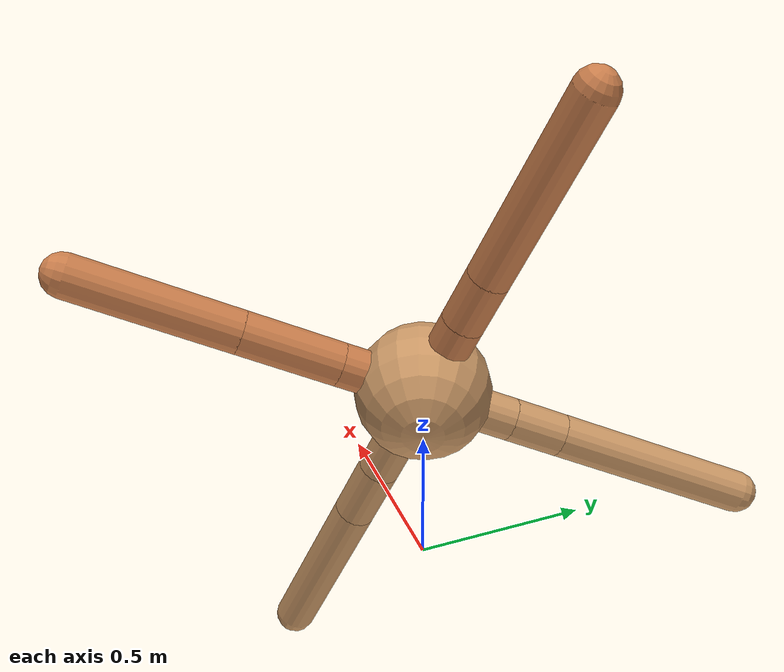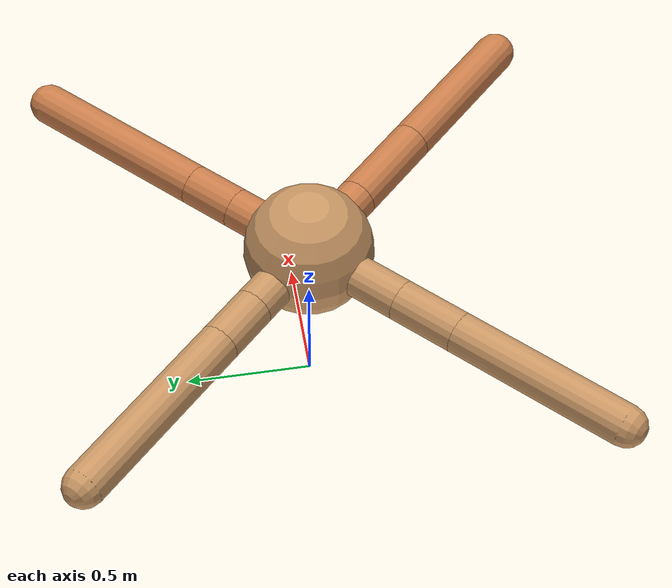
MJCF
<mujoco model="ant">
  <compiler angle="degree" coordinate="local" inertiafromgeom="true" />
  <option integrator="RK4" timestep="0.01" />
  <custom>
    <numeric data="0.0 0.0 0.55 1.0 0.0 0.0 0.0 0.0 1.0 0.0 -1.0 0.0 -1.0 0.0 1.0" name="init_qpos" />
  </custom>
  <default>
    <joint armature="1" damping="1" limited="true" />
    <geom conaffinity="0" condim="3" density="5.0" friction="1.5 0.1 0.1" margin="0.01" rgba="0.8 0.6 0.4 1" />
  </default>
  <worldbody>
    <body name="torso" pos="0 0 0.75">
      <geom name="torso_geom" pos="0 0 0" size="0.25" type="sphere" />

      <body name="front_left_leg" pos="0 0 0">
        <geom fromto="0.0 0.0 0.0 0.2439893659186587 0.2439893659186587 0.0" name="aux_1_geom" size="0.08" type="capsule" rgba=".8 .5 .3 1" />
        <body name="aux_1" pos="0.2439893659186587 0.2439893659186587 0.0">
          <joint axis="0 0 1" name="hip_1" pos="0.0 0.0 0.0" range="-40 40" type="hinge" />
          <geom fromto="0.0 0.0 0.0 0.14498847697659792 0.14498847697659792 0.0" name="left_leg_geom" size="0.08" type="capsule" rgba=".8 .5 .3 1" />
          <body pos="0.14498847697659792 0.14498847697659792 0.0" name="front_left_foot">
            <joint axis="-1 1 0" name="ankle_1" pos="0.0 0.0 0.0" range="30 100" type="hinge" />
            <geom fromto="0.0 0.0 0.0 0.5235946893710374 0.5235946893710374 0.0" name="left_ankle_geom" size="0.08" type="capsule" rgba=".8 .5 .3 1" />
          </body>
        </body>
      </body>
      <body name="front_right_leg" pos="0 0 0">
        <geom fromto="0.0 0.0 0.0 -0.2452326414281879 0.2452326414281879 0.0" name="aux_2_geom" size="0.08" type="capsule" />
        <body name="aux_2" pos="-0.2452326414281879 0.2452326414281879 0.0">
          <joint axis="0 0 1" name="hip_2" pos="0.0 0.0 0.0" range="-40 40" type="hinge" />
          <geom fromto="0.0 0.0 0.0 -0.1430115495497274 0.1430115495497274 0.0" name="right_leg_geom" size="0.08" type="capsule" />
          <body pos="-0.1430115495497274 0.1430115495497274 0.0" name="front_right_foot">
            <joint axis="1 1 0" name="ankle_2" pos="0.0 0.0 0.0" range="-100 -30" type="hinge" />
            <geom fromto="0.0 0.0 0.0 -0.5412067635195538 0.5412067635195538 0.0" name="right_ankle_geom" size="0.08" type="capsule" />
          </body>
        </body>
      </body>
      <body name="left_back_leg" pos="0 0 0">
        <geom fromto="0.0 0.0 0.0 -0.29912176875055546 -0.29912176875055546 0.0" name="aux_3_geom" size="0.08" type="capsule" />
        <body name="aux_3" pos="-0.29912176875055546 -0.29912176875055546 0.0">
          <joint axis="0 0 1" name="hip_3" pos="0.0 0.0 0.0" range="-40 40" type="hinge" />
          <geom fromto="0.0 0.0 0.0 -0.1813005761435196 -0.1813005761435196 0.0" name="back_leg_geom" size="0.08" type="capsule" />
          <body pos="-0.1813005761435196 -0.1813005761435196 0.0" name="left_back_foot">
            <joint axis="-1 1 0" name="ankle_3" pos="0.0 0.0 0.0" range="-100 -30" type="hinge" />
            <geom fromto="0.0 0.0 0.0 -0.49799960863743176 -0.49799960863743176 0.0" name="third_ankle_geom" size="0.08" type="capsule" />
          </body>
        </body>
      </body>
      <body name="right_back_leg" pos="0 0 0">
        <geom fromto="0.0 0.0 0.0 0.2252873850167316 -0.2252873850167316 0.0" name="aux_4_geom" size="0.08" type="capsule" rgba=".8 .5 .3 1" />
        <body name="aux_4" pos="0.2252873850167316 -0.2252873850167316 0.0">
          <joint axis="0 0 1" name="hip_4" pos="0.0 0.0 0.0" range="-40 40" type="hinge" />
          <geom fromto="0.0 0.0 0.0 0.25889073231323145 -0.25889073231323145 0.0" name="rightback_leg_geom" size="0.08" type="capsule" rgba=".8 .5 .3 1" />
          <body pos="0.25889073231323145 -0.25889073231323145 0.0" name="right_back_foot">
            <joint axis="1 1 0" name="ankle_4" pos="0.0 0.0 0.0" range="30 100" type="hinge" />
            <geom fromto="0.0 0.0 0.0 0.4336954629554045 -0.4336954629554045 0.0" name="fourth_ankle_geom" size="0.08" type="capsule" rgba=".8 .5 .3 1" />
          </body>
        </body>
      </body>
    </body>
  </worldbody>
  <actuator>
    <motor ctrllimited="true" ctrlrange="-1.0 1.0" joint="hip_4" gear="150" />
    <motor ctrllimited="true" ctrlrange="-1.0 1.0" joint="ankle_4" gear="150" />
    <motor ctrllimited="true" ctrlrange="-1.0 1.0" joint="hip_1" gear="150" />
    <motor ctrllimited="true" ctrlrange="-1.0 1.0" joint="ankle_1" gear="150" />
    <motor ctrllimited="true" ctrlrange="-1.0 1.0" joint="hip_2" gear="150" />
    <motor ctrllimited="true" ctrlrange="-1.0 1.0" joint="ankle_2" gear="150" />
    <motor ctrllimited="true" ctrlrange="-1.0 1.0" joint="hip_3" gear="150" />
    <motor ctrllimited="true" ctrlrange="-1.0 1.0" joint="ankle_3" gear="150" />
  </actuator>
</mujoco>
